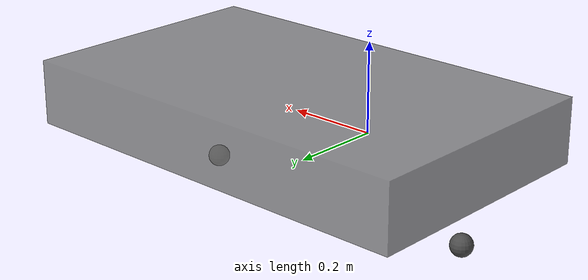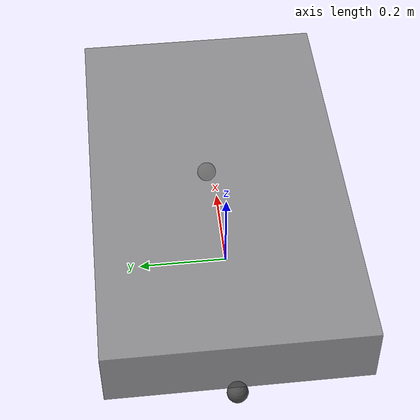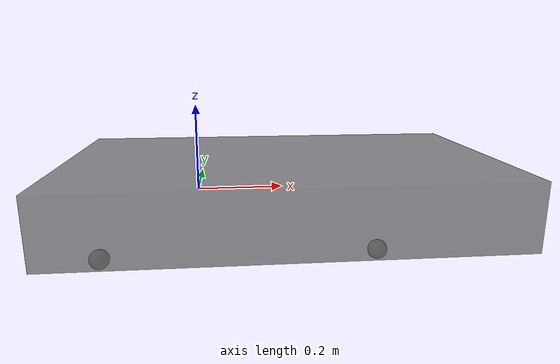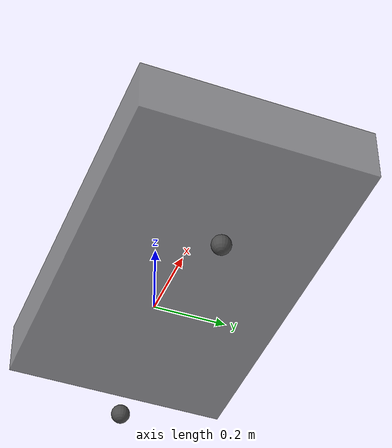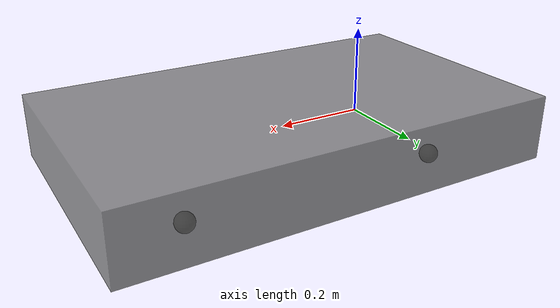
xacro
<?xml version="1.0"?>
<robot xmlns:xacro="http://www.ros.org/wiki/xacro">

  <!-- Chassis visual approximation — dimensions from robot_params.yaml -->
  <xacro:property name="chassis_length" value="1.0"/>
  <xacro:property name="chassis_width" value="0.6"/>
  <xacro:property name="chassis_height" value="0.15"/>
  <xacro:property name="chassis_mass" value="30.0"/>
  <xacro:property name="chassis_visual_x_offset" value="0.2"/>

  <link name="base_link">
    <visual>
      <origin xyz="${chassis_visual_x_offset} 0 0" rpy="0 0 0"/>
      <geometry>
        <box size="${chassis_length} ${chassis_width} ${chassis_height}"/>
      </geometry>
      <material name="chassis_grey">
        <color rgba="0.5 0.5 0.5 0.8"/>
      </material>
    </visual>
    <collision>
      <origin xyz="${chassis_visual_x_offset} 0 0" rpy="0 0 0"/>
      <geometry>
        <box size="${chassis_length} ${chassis_width} ${chassis_height}"/>
      </geometry>
    </collision>
    <inertial>
      <mass value="${chassis_mass}"/>
      <origin xyz="${chassis_visual_x_offset} 0 0"/>
      <inertia ixx="${(1.0/12.0)*chassis_mass*(chassis_width*chassis_width + chassis_height*chassis_height)}"
               ixy="0" ixz="0"
               iyy="${(1.0/12.0)*chassis_mass*(chassis_length*chassis_length + chassis_height*chassis_height)}"
               iyz="0"
               izz="${(1.0/12.0)*chassis_mass*(chassis_length*chassis_length + chassis_width*chassis_width)}"/>
    </inertial>
  </link>

  <!-- Base footprint at ground level (for Nav2 costmap) -->
  <link name="base_footprint"/>

  <joint name="base_footprint_joint" type="fixed">
    <parent link="base_link"/>
    <child link="base_footprint"/>
    <origin xyz="0 0 -0.200" rpy="0 0 0"/>
  </joint>

  <!-- Front caster for stability in simulation -->
  <link name="front_caster">
    <visual>
      <geometry>
        <sphere radius="0.025"/>
      </geometry>
      <material name="caster_grey">
        <color rgba="0.3 0.3 0.3 1.0"/>
      </material>
    </visual>
    <collision>
      <geometry>
        <sphere radius="0.025"/>
      </geometry>
    </collision>
    <inertial>
      <mass value="0.5"/>
      <inertia ixx="0.0001" ixy="0" ixz="0" iyy="0.0001" iyz="0" izz="0.0001"/>
    </inertial>
  </link>

  <joint name="front_caster_joint" type="fixed">
    <parent link="base_link"/>
    <child link="front_caster"/>
    <origin xyz="0.45 0 -0.175" rpy="0 0 0"/>
  </joint>

  <!-- Rear caster for stability in simulation -->
  <link name="rear_caster">
    <visual>
      <geometry>
        <sphere radius="0.025"/>
      </geometry>
      <material name="caster_grey">
        <color rgba="0.3 0.3 0.3 1.0"/>
      </material>
    </visual>
    <collision>
      <geometry>
        <sphere radius="0.025"/>
      </geometry>
    </collision>
    <inertial>
      <mass value="0.5"/>
      <inertia ixx="0.0001" ixy="0" ixz="0" iyy="0.0001" iyz="0" izz="0.0001"/>
    </inertial>
  </link>

  <joint name="rear_caster_joint" type="fixed">
    <parent link="base_link"/>
    <child link="rear_caster"/>
    <origin xyz="-0.25 0 -0.175" rpy="0 0 0"/>
  </joint>

  <!-- Gz friction for casters (low friction to simulate free-rolling) -->
  <gazebo reference="front_caster">
    <mu1>0.001</mu1>
    <mu2>0.001</mu2>
    <visual>
      <material>
        <ambient>0.2 0.2 0.2 1</ambient>
        <diffuse>0.3 0.3 0.3 1</diffuse>
        <specular>0.15 0.15 0.15 1</specular>
        <pbr><metal><metalness>0.3</metalness><roughness>0.6</roughness></metal></pbr>
      </material>
    </visual>
  </gazebo>

  <gazebo reference="rear_caster">
    <mu1>0.001</mu1>
    <mu2>0.001</mu2>
    <visual>
      <material>
        <ambient>0.2 0.2 0.2 1</ambient>
        <diffuse>0.3 0.3 0.3 1</diffuse>
        <specular>0.15 0.15 0.15 1</specular>
        <pbr><metal><metalness>0.3</metalness><roughness>0.6</roughness></metal></pbr>
      </material>
    </visual>
  </gazebo>

  <gazebo reference="base_link">
    <visual>
      <material>
        <ambient>0.3 0.32 0.35 1</ambient>
        <diffuse>0.4 0.42 0.45 1</diffuse>
        <specular>0.3 0.3 0.3 1</specular>
        <pbr><metal><metalness>0.4</metalness><roughness>0.5</roughness></metal></pbr>
      </material>
    </visual>
  </gazebo>

</robot>
